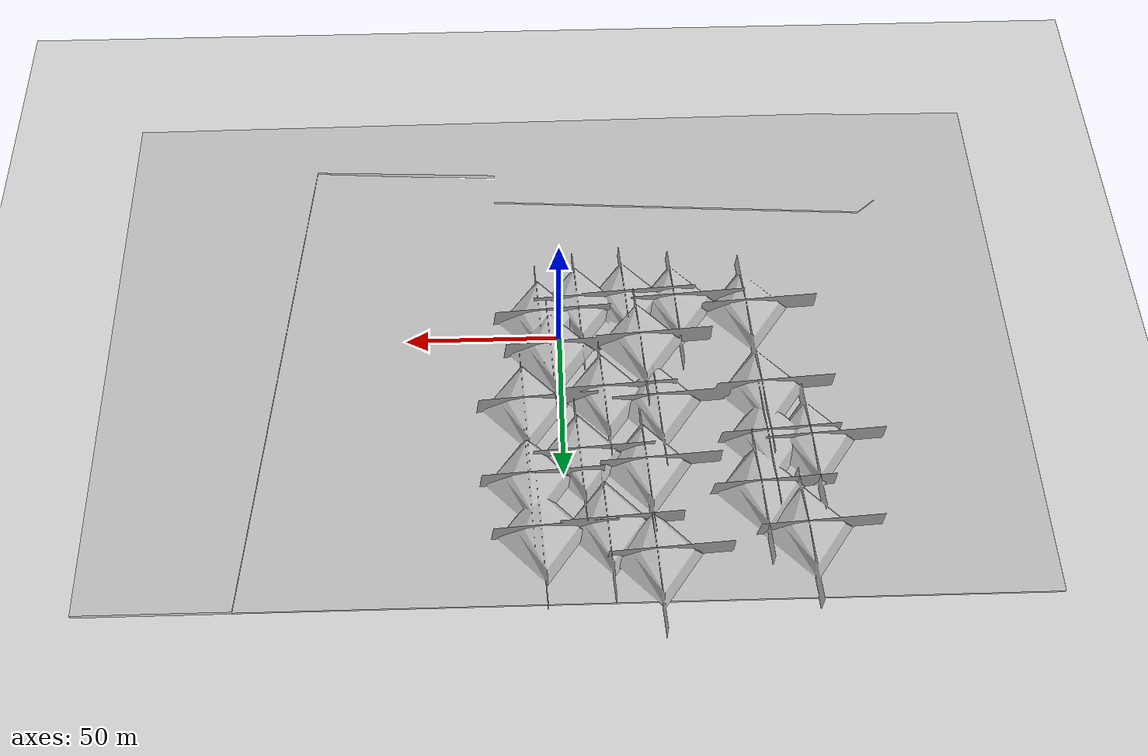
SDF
<?xml version="1.0" ?>
<sdf version="1.4">
  <world name="SeaTech">
    <scene>
      <sky>
        <clouds>
          <speed>12</speed>
        </clouds>
      </sky>
    </scene>

    <wind>
      <linear_velocity>10 0 0</linear_velocity> <!-- Wind linear velocity -->
    </wind>

    <!-- A global light source -->
    <include>
      <uri>model://sun</uri>
    </include>

    <gui fullscreen='0'>
      <camera name='user_camera'>
        <pose frame=''>17.5798 4.82061 4.05674 0 0.216 -2.876</pose>
        <view_controller>orbit</view_controller>
      </camera>
    </gui>
    <include>
      <uri>model://ground_plane</uri>
    </include>
    <include>
      <pose> 0 0 0 0 0 0 </pose>
      <uri>model://seatech</uri>
    </include>
  </world>
</sdf>

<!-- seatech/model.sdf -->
<sdf version="1.4">
  <model name="seatech">
    <pose>0 0 0 0 0 0</pose>
    <static>true</static>
    <link name="seatech_link">
      <visual name="visual">
            <geometry>
                <mesh>
                    <uri>model://seatech.dae</uri>
                </mesh>
            </geometry>
        </visual>
        <collision name="collision">
            <geometry>
                <mesh>
                    <uri>model://seatech.dae</uri>
                </mesh>
            </geometry>
        </collision>
    </link>
  </model>
</sdf>
